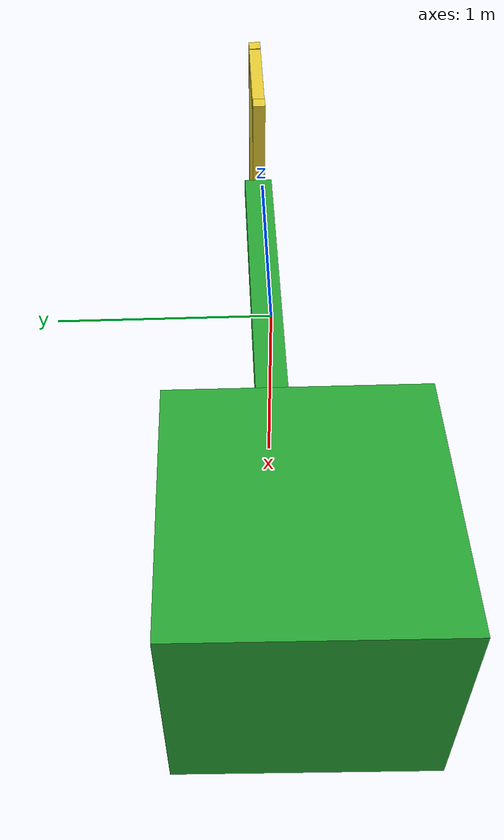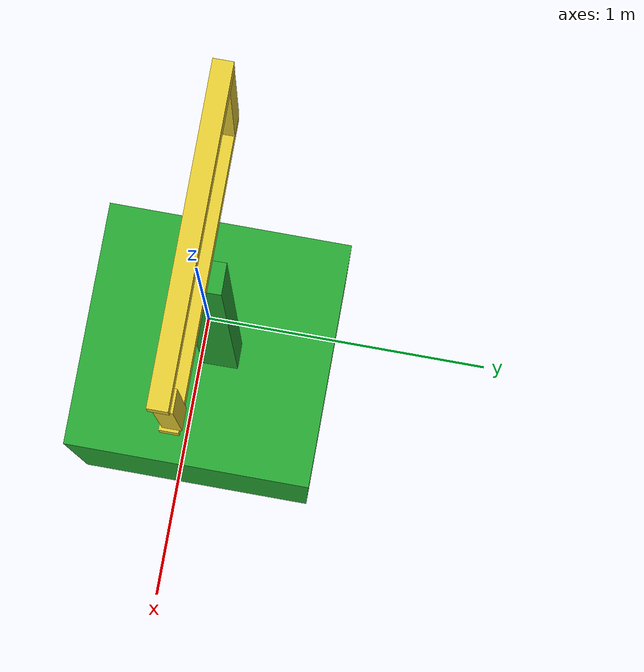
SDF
<?xml version='1.0'?>
<sdf version='1.6'>
  <model name='hoop'>
    <model name='hoop'>
      <link name='link_1'>
        <inertial>
          <mass>0.0273232</mass>
          <inertia>
            <ixx>6.88477e-05</ixx>
            <ixy>0</ixy>
            <ixz>0</ixz>
            <iyy>0.00835603</iyy>
            <iyz>0</iyz>
            <izz>0.00837748</izz>
          </inertia>
          <pose frame=''>0 0 0 0 -0 0</pose>
        </inertial>
        <pose frame=''>0.009933 0.022073 0.061087 -0.012197 -1.55808 0.021181</pose>
        <visual name='visual'>
          <pose frame=''>0 0 0 0 -0 0</pose>
          <geometry>
            <box>
              <size>1.91297 0.140816 0.10202</size>
            </box>
          </geometry>
          <material>
            <lighting>1</lighting>
            <script>
              <uri>file://media/materials/scripts/gazebo.material</uri>
              <name>Gazebo/Green</name>
            </script>
            <shader type='pixel'/>
            <emissive>0 0 0 1</emissive>
          </material>
          <transparency>0</transparency>
          <cast_shadows>1</cast_shadows>
        </visual>
        <collision name='collision'>
          <laser_retro>0</laser_retro>
          <max_contacts>10</max_contacts>
          <pose frame=''>0 0 0 0 -0 0</pose>
          <geometry>
            <box>
              <size>1.91297 0.140816 0.10202</size>
            </box>
          </geometry>
          <surface>
            <friction>
              <ode>
                <mu>1</mu>
                <mu2>1</mu2>
                <fdir1>0 0 0</fdir1>
                <slip1>0</slip1>
                <slip2>0</slip2>
              </ode>
              <torsional>
                <coefficient>1</coefficient>
                <patch_radius>0</patch_radius>
                <surface_radius>0</surface_radius>
                <use_patch_radius>1</use_patch_radius>
                <ode>
                  <slip>0</slip>
                </ode>
              </torsional>
            </friction>
            <bounce>
              <restitution_coefficient>0</restitution_coefficient>
              <threshold>1e+06</threshold>
            </bounce>
            <contact>
              <collide_without_contact>0</collide_without_contact>
              <collide_without_contact_bitmask>1</collide_without_contact_bitmask>
              <collide_bitmask>1</collide_bitmask>
              <ode>
                <soft_cfm>0</soft_cfm>
                <soft_erp>0.2</soft_erp>
                <kp>1e+13</kp>
                <kd>1</kd>
                <max_vel>0.01</max_vel>
                <min_depth>0</min_depth>
              </ode>
              <bullet>
                <split_impulse>1</split_impulse>
                <split_impulse_penetration_threshold>-0.01</split_impulse_penetration_threshold>
                <soft_cfm>0</soft_cfm>
                <soft_erp>0.2</soft_erp>
                <kp>1e+13</kp>
                <kd>1</kd>
              </bullet>
            </contact>
          </surface>
        </collision>
        <self_collide>0</self_collide>
        <enable_wind>0</enable_wind>
        <kinematic>0</kinematic>
      </link>
      <link name='link_2'>
        <inertial>
          <mass>1</mass>
          <inertia>
            <ixx>0.166667</ixx>
            <ixy>0</ixy>
            <ixz>0</ixz>
            <iyy>0.166667</iyy>
            <iyz>0</iyz>
            <izz>0.166667</izz>
          </inertia>
          <pose frame=''>0 0 0 0 -0 0</pose>
        </inertial>
        <pose frame=''>-0.032027 -0.042877 -1.41424 0 -0 0</pose>
        <visual name='visual'>
          <pose frame=''>0 0 0 0 -0 0</pose>
          <geometry>
            <box>
              <size>1 1 1</size>
            </box>
          </geometry>
          <material>
            <lighting>1</lighting>
            <script>
              <uri>file://media/materials/scripts/gazebo.material</uri>
              <name>Gazebo/Green</name>
            </script>
            <shader type='pixel'/>
            <emissive>0 0 0 1</emissive>
          </material>
          <transparency>0</transparency>
          <cast_shadows>1</cast_shadows>
        </visual>
        <collision name='collision'>
          <laser_retro>0</laser_retro>
          <max_contacts>10</max_contacts>
          <pose frame=''>0 0 0 0 -0 0</pose>
          <geometry>
            <box>
              <size>1 1 1</size>
            </box>
          </geometry>
          <surface>
            <friction>
              <ode>
                <mu>1</mu>
                <mu2>1</mu2>
                <fdir1>0 0 0</fdir1>
                <slip1>0</slip1>
                <slip2>0</slip2>
              </ode>
              <torsional>
                <coefficient>1</coefficient>
                <patch_radius>0</patch_radius>
                <surface_radius>0</surface_radius>
                <use_patch_radius>1</use_patch_radius>
                <ode>
                  <slip>0</slip>
                </ode>
              </torsional>
            </friction>
            <bounce>
              <restitution_coefficient>0</restitution_coefficient>
              <threshold>1e+06</threshold>
            </bounce>
            <contact>
              <collide_without_contact>0</collide_without_contact>
              <collide_without_contact_bitmask>1</collide_without_contact_bitmask>
              <collide_bitmask>1</collide_bitmask>
              <ode>
                <soft_cfm>0</soft_cfm>
                <soft_erp>0.2</soft_erp>
                <kp>1e+13</kp>
                <kd>1</kd>
                <max_vel>0.01</max_vel>
                <min_depth>0</min_depth>
              </ode>
              <bullet>
                <split_impulse>1</split_impulse>
                <split_impulse_penetration_threshold>-0.01</split_impulse_penetration_threshold>
                <soft_cfm>0</soft_cfm>
                <soft_erp>0.2</soft_erp>
                <kp>1e+13</kp>
                <kd>1</kd>
              </bullet>
            </contact>
          </surface>
        </collision>
        <self_collide>0</self_collide>
        <enable_wind>0</enable_wind>
        <kinematic>0</kinematic>
      </link>
      <model name='hoop_loop'>
        <link name='link_0'>
          <inertial>
            <mass>0.00433914</mass>
            <inertia>
              <ixx>3.16452e-06</ixx>
              <ixy>0</ixy>
              <ixz>0</ixz>
              <iyy>0.000363386</iyy>
              <iyz>0</iyz>
              <izz>0.000362969</izz>
            </inertia>
            <pose frame=''>0 0 0 0 -0 0</pose>
          </inertial>
          <pose frame=''>0.002295 -0.00337 -0.283617 0 -0 0</pose>
          <visual name='visual'>
            <pose frame=''>0 0 0 0 -0 0</pose>
            <geometry>
              <box>
                <size>1 0.061628 0.070381</size>
              </box>
            </geometry>
            <material>
              <lighting>1</lighting>
              <script>
                <uri>file://media/materials/scripts/gazebo.material</uri>
                <name>Gazebo/ZincYellow</name>
              </script>
              <shader type='pixel'/>
            </material>
            <transparency>0</transparency>
            <cast_shadows>1</cast_shadows>
          </visual>
          <collision name='collision'>
            <laser_retro>0</laser_retro>
            <max_contacts>10</max_contacts>
            <pose frame=''>0 0 0 0 -0 0</pose>
            <geometry>
              <box>
                <size>1 0.061628 0.070381</size>
              </box>
            </geometry>
            <surface>
              <friction>
                <ode>
                  <mu>1</mu>
                  <mu2>1</mu2>
                  <fdir1>0 0 0</fdir1>
                  <slip1>0</slip1>
                  <slip2>0</slip2>
                </ode>
                <torsional>
                  <coefficient>1</coefficient>
                  <patch_radius>0</patch_radius>
                  <surface_radius>0</surface_radius>
                  <use_patch_radius>1</use_patch_radius>
                  <ode>
                    <slip>0</slip>
                  </ode>
                </torsional>
              </friction>
              <bounce>
                <restitution_coefficient>0</restitution_coefficient>
                <threshold>1e+06</threshold>
              </bounce>
              <contact>
                <collide_without_contact>0</collide_without_contact>
                <collide_without_contact_bitmask>1</collide_without_contact_bitmask>
                <collide_bitmask>1</collide_bitmask>
                <ode>
                  <soft_cfm>0</soft_cfm>
                  <soft_erp>0.2</soft_erp>
                  <kp>1e+13</kp>
                  <kd>1</kd>
                  <max_vel>0.01</max_vel>
                  <min_depth>0</min_depth>
                </ode>
                <bullet>
                  <split_impulse>1</split_impulse>
                  <split_impulse_penetration_threshold>-0.01</split_impulse_penetration_threshold>
                  <soft_cfm>0</soft_cfm>
                  <soft_erp>0.2</soft_erp>
                  <kp>1e+13</kp>
                  <kd>1</kd>
                </bullet>
              </contact>
            </surface>
          </collision>
          <self_collide>0</self_collide>
          <enable_wind>0</enable_wind>
          <kinematic>0</kinematic>
        </link>
        <link name='link_0_clone'>
          <inertial>
            <mass>0.00215757</mass>
            <inertia>
              <ixx>1.5735e-06</ixx>
              <ixy>0</ixy>
              <ixz>0</ixz>
              <iyy>4.53433e-05</iyy>
              <iyz>0</iyz>
              <izz>4.51356e-05</izz>
            </inertia>
            <pose frame=''>0 0 0 0 -0 0</pose>
          </inertial>
          <pose frame=''>-0.461658 -0.001381 -0.000602 0 -1.56607 0</pose>
          <visual name='visual'>
            <pose frame=''>0 0 0 0 -0 0</pose>
            <geometry>
              <box>
                <size>0.497229 0.061628 0.070381</size>
              </box>
            </geometry>
            <material>
              <lighting>1</lighting>
              <script>
                <uri>file://media/materials/scripts/gazebo.material</uri>
                <name>Gazebo/ZincYellow</name>
              </script>
              <shader type='pixel'/>
            </material>
            <transparency>0</transparency>
            <cast_shadows>1</cast_shadows>
          </visual>
          <collision name='collision'>
            <laser_retro>0</laser_retro>
            <max_contacts>10</max_contacts>
            <pose frame=''>0 0 0 0 -0 0</pose>
            <geometry>
              <box>
                <size>0.497229 0.061628 0.070381</size>
              </box>
            </geometry>
            <surface>
              <friction>
                <ode>
                  <mu>1</mu>
                  <mu2>1</mu2>
                  <fdir1>0 0 0</fdir1>
                  <slip1>0</slip1>
                  <slip2>0</slip2>
                </ode>
                <torsional>
                  <coefficient>1</coefficient>
                  <patch_radius>0</patch_radius>
                  <surface_radius>0</surface_radius>
                  <use_patch_radius>1</use_patch_radius>
                  <ode>
                    <slip>0</slip>
                  </ode>
                </torsional>
              </friction>
              <bounce>
                <restitution_coefficient>0</restitution_coefficient>
                <threshold>1e+06</threshold>
              </bounce>
              <contact>
                <collide_without_contact>0</collide_without_contact>
                <collide_without_contact_bitmask>1</collide_without_contact_bitmask>
                <collide_bitmask>1</collide_bitmask>
                <ode>
                  <soft_cfm>0</soft_cfm>
                  <soft_erp>0.2</soft_erp>
                  <kp>1e+13</kp>
                  <kd>1</kd>
                  <max_vel>0.01</max_vel>
                  <min_depth>0</min_depth>
                </ode>
                <bullet>
                  <split_impulse>1</split_impulse>
                  <split_impulse_penetration_threshold>-0.01</split_impulse_penetration_threshold>
                  <soft_cfm>0</soft_cfm>
                  <soft_erp>0.2</soft_erp>
                  <kp>1e+13</kp>
                  <kd>1</kd>
                </bullet>
              </contact>
            </surface>
          </collision>
          <self_collide>0</self_collide>
          <enable_wind>0</enable_wind>
          <kinematic>0</kinematic>
        </link>
        <link name='link_0_clone_0'>
          <inertial>
            <mass>0.00433914</mass>
            <inertia>
              <ixx>3.16452e-06</ixx>
              <ixy>0</ixy>
              <ixz>0</ixz>
              <iyy>0.000363386</iyy>
              <iyz>0</iyz>
              <izz>0.000362969</izz>
            </inertia>
            <pose frame=''>0 0 0 0 -0 0</pose>
          </inertial>
          <pose frame=''>0.000654 -0.001557 0.284822 0 -0 0</pose>
          <visual name='visual'>
            <pose frame=''>0 0 0 0 -0 0</pose>
            <geometry>
              <box>
                <size>1 0.061628 0.070381</size>
              </box>
            </geometry>
            <material>
              <lighting>1</lighting>
              <script>
                <uri>file://media/materials/scripts/gazebo.material</uri>
                <name>Gazebo/ZincYellow</name>
              </script>
              <shader type='pixel'/>
            </material>
            <transparency>0</transparency>
            <cast_shadows>1</cast_shadows>
          </visual>
          <collision name='collision'>
            <laser_retro>0</laser_retro>
            <max_contacts>10</max_contacts>
            <pose frame=''>0 0 0 0 -0 0</pose>
            <geometry>
              <box>
                <size>1 0.061628 0.070381</size>
              </box>
            </geometry>
            <surface>
              <friction>
                <ode>
                  <mu>1</mu>
                  <mu2>1</mu2>
                  <fdir1>0 0 0</fdir1>
                  <slip1>0</slip1>
                  <slip2>0</slip2>
                </ode>
                <torsional>
                  <coefficient>1</coefficient>
                  <patch_radius>0</patch_radius>
                  <surface_radius>0</surface_radius>
                  <use_patch_radius>1</use_patch_radius>
                  <ode>
                    <slip>0</slip>
                  </ode>
                </torsional>
              </friction>
              <bounce>
                <restitution_coefficient>0</restitution_coefficient>
                <threshold>1e+06</threshold>
              </bounce>
              <contact>
                <collide_without_contact>0</collide_without_contact>
                <collide_without_contact_bitmask>1</collide_without_contact_bitmask>
                <collide_bitmask>1</collide_bitmask>
                <ode>
                  <soft_cfm>0</soft_cfm>
                  <soft_erp>0.2</soft_erp>
                  <kp>1e+13</kp>
                  <kd>1</kd>
                  <max_vel>0.01</max_vel>
                  <min_depth>0</min_depth>
                </ode>
                <bullet>
                  <split_impulse>1</split_impulse>
                  <split_impulse_penetration_threshold>-0.01</split_impulse_penetration_threshold>
                  <soft_cfm>0</soft_cfm>
                  <soft_erp>0.2</soft_erp>
                  <kp>1e+13</kp>
                  <kd>1</kd>
                </bullet>
              </contact>
            </surface>
          </collision>
          <self_collide>0</self_collide>
          <enable_wind>0</enable_wind>
          <kinematic>0</kinematic>
        </link>
        <link name='link_0_clone_clone'>
          <inertial>
            <mass>0.00215757</mass>
            <inertia>
              <ixx>1.5735e-06</ixx>
              <ixy>0</ixy>
              <ixz>0</ixz>
              <iyy>4.53433e-05</iyy>
              <iyz>0</iyz>
              <izz>4.51356e-05</izz>
            </inertia>
            <pose frame=''>0 0 0 0 -0 0</pose>
          </inertial>
          <pose frame=''>0.458705 0.006309 -0.000602 0 -1.56607 0</pose>
          <visual name='visual'>
            <pose frame=''>0 0 0 0 -0 0</pose>
            <geometry>
              <box>
                <size>0.497229 0.061628 0.070381</size>
              </box>
            </geometry>
            <material>
              <lighting>1</lighting>
              <script>
                <uri>file://media/materials/scripts/gazebo.material</uri>
                <name>Gazebo/ZincYellow</name>
              </script>
              <shader type='pixel'/>
            </material>
            <transparency>0</transparency>
            <cast_shadows>1</cast_shadows>
          </visual>
          <collision name='collision'>
            <laser_retro>0</laser_retro>
            <max_contacts>10</max_contacts>
            <pose frame=''>0 0 0 0 -0 0</pose>
            <geometry>
              <box>
                <size>0.497229 0.061628 0.070381</size>
              </box>
            </geometry>
            <surface>
              <friction>
                <ode>
                  <mu>1</mu>
                  <mu2>1</mu2>
                  <fdir1>0 0 0</fdir1>
                  <slip1>0</slip1>
                  <slip2>0</slip2>
                </ode>
                <torsional>
                  <coefficient>1</coefficient>
                  <patch_radius>0</patch_radius>
                  <surface_radius>0</surface_radius>
                  <use_patch_radius>1</use_patch_radius>
                  <ode>
                    <slip>0</slip>
                  </ode>
                </torsional>
              </friction>
              <bounce>
                <restitution_coefficient>0</restitution_coefficient>
                <threshold>1e+06</threshold>
              </bounce>
              <contact>
                <collide_without_contact>0</collide_without_contact>
                <collide_without_contact_bitmask>1</collide_without_contact_bitmask>
                <collide_bitmask>1</collide_bitmask>
                <ode>
                  <soft_cfm>0</soft_cfm>
                  <soft_erp>0.2</soft_erp>
                  <kp>1e+13</kp>
                  <kd>1</kd>
                  <max_vel>0.01</max_vel>
                  <min_depth>0</min_depth>
                </ode>
                <bullet>
                  <split_impulse>1</split_impulse>
                  <split_impulse_penetration_threshold>-0.01</split_impulse_penetration_threshold>
                  <soft_cfm>0</soft_cfm>
                  <soft_erp>0.2</soft_erp>
                  <kp>1e+13</kp>
                  <kd>1</kd>
                </bullet>
              </contact>
            </surface>
          </collision>
          <self_collide>0</self_collide>
          <enable_wind>0</enable_wind>
          <kinematic>0</kinematic>
        </link>
        <static>0</static>
        <allow_auto_disable>1</allow_auto_disable>
        <pose frame=''>0.022094 0.020799 1.35316 0 -0 0</pose>
      </model>
      <joint name='link_0_JOINT_0' type='fixed'>
        <parent>hoop_loop::link_0</parent>
        <child>link_1</child>
        <pose frame=''>0 0 0 0 -0 0</pose>
        <physics>
          <ode>
            <limit>
              <cfm>0</cfm>
              <erp>0.2</erp>
            </limit>
            <suspension>
              <cfm>0</cfm>
              <erp>0.2</erp>
            </suspension>
          </ode>
        </physics>
      </joint>
      <joint name='link_1_JOINT_1' type='fixed'>
        <parent>link_1</parent>
        <child>link_2</child>
        <pose frame=''>0 0 0 0 -0 0</pose>
        <physics>
          <ode>
            <limit>
              <cfm>0</cfm>
              <erp>0.2</erp>
            </limit>
            <suspension>
              <cfm>0</cfm>
              <erp>0.2</erp>
            </suspension>
          </ode>
        </physics>
      </joint>
      <static>0</static>
      <allow_auto_disable>1</allow_auto_disable>
      <pose frame=''>5e-06 1e-06 -3e-06 0 -0 0</pose>
    </model>
    <joint name='link_0_JOINT_0' type='revolute'>
      <parent>hoop::hoop_loop::link_0</parent>
      <child>hoop::hoop_loop::link_0_clone_clone</child>
      <pose frame=''>0 0 0 0 -0 0</pose>
      <axis>
        <xyz>1 0 0</xyz>
        <use_parent_model_frame>0</use_parent_model_frame>
        <limit>
          <lower>-1.79769e+308</lower>
          <upper>1.79769e+308</upper>
          <effort>-1</effort>
          <velocity>-1</velocity>
        </limit>
        <dynamics>
          <spring_reference>0</spring_reference>
          <spring_stiffness>0</spring_stiffness>
          <damping>0</damping>
        </dynamics>
      </axis>
      <physics>
        <ode>
          <limit>
            <cfm>0</cfm>
            <erp>0.2</erp>
          </limit>
          <suspension>
            <cfm>0</cfm>
            <erp>0.2</erp>
          </suspension>
        </ode>
      </physics>
    </joint>
    <joint name='link_0_JOINT_1' type='fixed'>
      <parent>hoop::hoop_loop::link_0</parent>
      <child>hoop::hoop_loop::link_0_clone_clone</child>
      <pose frame=''>0 0 0 0 -0 0</pose>
      <physics>
        <ode>
          <limit>
            <cfm>0</cfm>
            <erp>0.2</erp>
          </limit>
          <suspension>
            <cfm>0</cfm>
            <erp>0.2</erp>
          </suspension>
        </ode>
      </physics>
    </joint>
    <joint name='link_0_JOINT_2' type='fixed'>
      <parent>hoop::hoop_loop::link_0</parent>
      <child>hoop::hoop_loop::link_0_clone</child>
      <pose frame=''>0 0 0 0 -0 0</pose>
      <physics>
        <ode>
          <limit>
            <cfm>0</cfm>
            <erp>0.2</erp>
          </limit>
          <suspension>
            <cfm>0</cfm>
            <erp>0.2</erp>
          </suspension>
        </ode>
      </physics>
    </joint>
    <joint name='link_0_clone_JOINT_3' type='fixed'>
      <parent>hoop::hoop_loop::link_0_clone</parent>
      <child>hoop::hoop_loop::link_0_clone_0</child>
      <pose frame=''>0 0 0 0 -0 0</pose>
      <physics>
        <ode>
          <limit>
            <cfm>0</cfm>
            <erp>0.2</erp>
          </limit>
          <suspension>
            <cfm>0</cfm>
            <erp>0.2</erp>
          </suspension>
        </ode>
      </physics>
    </joint>
    <joint name='link_0_clone_clone_JOINT_4' type='fixed'>
      <parent>hoop::hoop_loop::link_0_clone_clone</parent>
      <child>hoop::hoop_loop::link_0_clone_0</child>
      <pose frame=''>0 0 0 0 -0 0</pose>
      <physics>
        <ode>
          <limit>
            <cfm>0</cfm>
            <erp>0.2</erp>
          </limit>
          <suspension>
            <cfm>0</cfm>
            <erp>0.2</erp>
          </suspension>
        </ode>
      </physics>
    </joint>
    <static>0</static>
    <allow_auto_disable>1</allow_auto_disable>
  </model>
</sdf>
